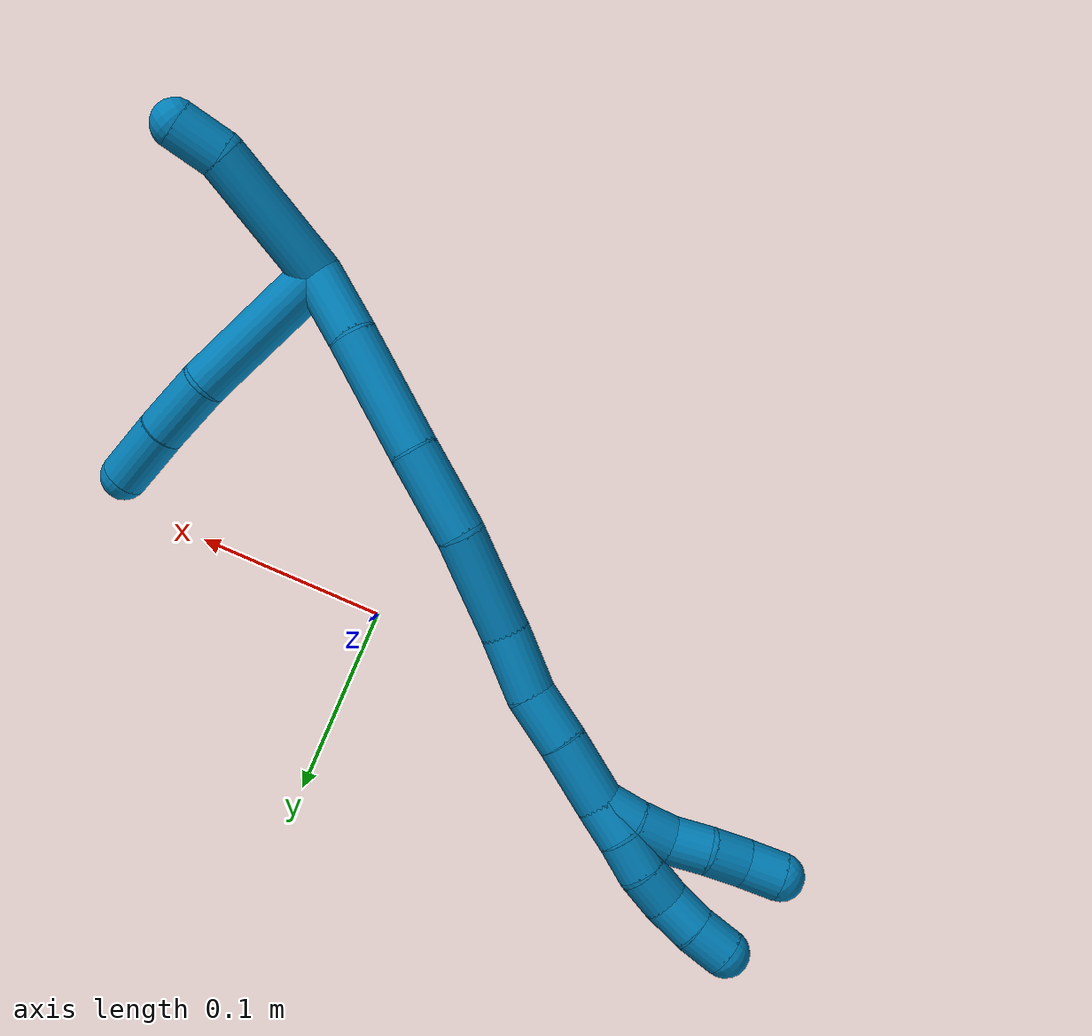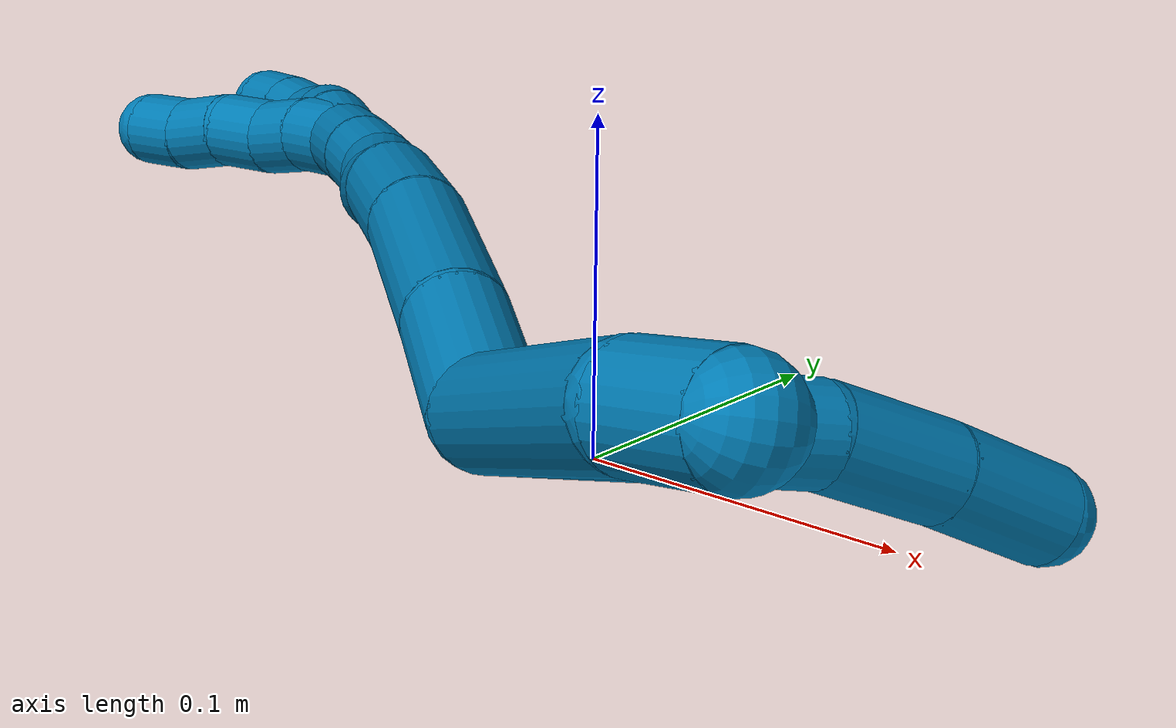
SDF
<sdf version="1.7">
 <world name="default">
  <model name="9">
   <static>0</static>
   <link name="9">
    <collision name="collision-cylinder-e_1_2_8">
     <pose>-0.002409 -0.00118 0.039666 0.029729 -0.060639 -0.000902</pose>
     <geometry><cylinder><radius>0.0125</radius><length>0.079512</length></cylinder></geometry>
     <surface>
      <friction><ode><mu>1.16</mu><mu2>1.16</mu2><slip1>0</slip1><slip2>0</slip2></ode></friction>
      <contact><ode><kp>1e+06</kp><kd>1</kd><max_vel>0</max_vel><min_depth>0.001</min_depth></ode></contact>
     </surface>
    </collision>
    <visual name="visual-cylinder-e_1_2_8">
     <pose>-0.002409 -0.00118 0.039666 0.029729 -0.060639 -0.000902</pose>
     <geometry><cylinder><radius>0.0125</radius><length>0.079512</length></cylinder></geometry>
     <material><ambient>0 0.490196 0.709804 1</ambient></material>
    </visual>
    <collision name="collision-cylinder-e_2_8_9">
     <pose>-0.005386 0.000877 0.096681 -0.184406 -0.03212 0.00297</pose>
     <geometry><cylinder><radius>0.0125</radius><length>0.035316</length></cylinder></geometry>
     <surface>
      <friction><ode><mu>1.16</mu><mu2>1.16</mu2><slip1>0</slip1><slip2>0</slip2></ode></friction>
      <contact><ode><kp>1e+06</kp><kd>1</kd><max_vel>0</max_vel><min_depth>0.001</min_depth></ode></contact>
     </surface>
    </collision>
    <visual name="visual-cylinder-e_2_8_9">
     <pose>-0.005386 0.000877 0.096681 -0.184406 -0.03212 0.00297</pose>
     <geometry><cylinder><radius>0.0125</radius><length>0.035316</length></cylinder></geometry>
     <material><ambient>0 0.490196 0.709804 1</ambient></material>
    </visual>
    <collision name="collision-cylinder-e_3_9_6">
     <pose>-0.006538 0.008415 0.131072 -0.247241 -0.03329 0.004137</pose>
     <geometry><cylinder><radius>0.0125</radius><length>0.035172</length></cylinder></geometry>
     <surface>
      <friction><ode><mu>1.16</mu><mu2>1.16</mu2><slip1>0</slip1><slip2>0</slip2></ode></friction>
      <contact><ode><kp>1e+06</kp><kd>1</kd><max_vel>0</max_vel><min_depth>0.001</min_depth></ode></contact>
     </surface>
    </collision>
    <visual name="visual-cylinder-e_3_9_6">
     <pose>-0.006538 0.008415 0.131072 -0.247241 -0.03329 0.004137</pose>
     <geometry><cylinder><radius>0.0125</radius><length>0.035172</length></cylinder></geometry>
     <material><ambient>0 0.490196 0.709804 1</ambient></material>
    </visual>
    <collision name="collision-cylinder-e_1_2_10">
     <pose>0.029685 -0.021934 -0.002642 1.69065 0.931003 1.03076</pose>
     <geometry><cylinder><radius>0.0125</radius><length>0.074007</length></cylinder></geometry>
     <surface>
      <friction><ode><mu>1.16</mu><mu2>1.16</mu2><slip1>0</slip1><slip2>0</slip2></ode></friction>
      <contact><ode><kp>1e+06</kp><kd>1</kd><max_vel>0</max_vel><min_depth>0.001</min_depth></ode></contact>
     </surface>
    </collision>
    <visual name="visual-cylinder-e_1_2_10">
     <pose>0.029685 -0.021934 -0.002642 1.69065 0.931003 1.03076</pose>
     <geometry><cylinder><radius>0.0125</radius><length>0.074007</length></cylinder></geometry>
     <material><ambient>0 0.490196 0.709804 1</ambient></material>
    </visual>
    <collision name="collision-cylinder-e_2_10_5">
     <pose>0.070053 -0.050594 -0.002196 1.14061 0.964935 0.648178</pose>
     <geometry><cylinder><radius>0.0125</radius><length>0.025993</length></cylinder></geometry>
     <surface>
      <friction><ode><mu>1.16</mu><mu2>1.16</mu2><slip1>0</slip1><slip2>0</slip2></ode></friction>
      <contact><ode><kp>1e+06</kp><kd>1</kd><max_vel>0</max_vel><min_depth>0.001</min_depth></ode></contact>
     </surface>
    </collision>
    <visual name="visual-cylinder-e_2_10_5">
     <pose>0.070053 -0.050594 -0.002196 1.14061 0.964935 0.648178</pose>
     <geometry><cylinder><radius>0.0125</radius><length>0.025993</length></cylinder></geometry>
     <material><ambient>0 0.490196 0.709804 1</ambient></material>
    </visual>
    <collision name="collision-cylinder-e_1_2_11">
     <pose>-0.018443 0.000845 0.002001 -0.399506 -1.45357 0.356204</pose>
     <geometry><cylinder><radius>0.0125</radius><length>0.037141</length></cylinder></geometry>
     <surface>
      <friction><ode><mu>1.16</mu><mu2>1.16</mu2><slip1>0</slip1><slip2>0</slip2></ode></friction>
      <contact><ode><kp>1e+06</kp><kd>1</kd><max_vel>0</max_vel><min_depth>0.001</min_depth></ode></contact>
     </surface>
    </collision>
    <visual name="visual-cylinder-e_1_2_11">
     <pose>-0.018443 0.000845 0.002001 -0.399506 -1.45357 0.356204</pose>
     <geometry><cylinder><radius>0.0125</radius><length>0.037141</length></cylinder></geometry>
     <material><ambient>0 0.490196 0.709804 1</ambient></material>
    </visual>
    <collision name="collision-cylinder-e_2_11_12">
     <pose>-0.067614 0.007305 0.009214 -0.822546 -1.32645 0.656829</pose>
     <geometry><cylinder><radius>0.0125</radius><length>0.063337</length></cylinder></geometry>
     <surface>
      <friction><ode><mu>1.16</mu><mu2>1.16</mu2><slip1>0</slip1><slip2>0</slip2></ode></friction>
      <contact><ode><kp>1e+06</kp><kd>1</kd><max_vel>0</max_vel><min_depth>0.001</min_depth></ode></contact>
     </surface>
    </collision>
    <visual name="visual-cylinder-e_2_11_12">
     <pose>-0.067614 0.007305 0.009214 -0.822546 -1.32645 0.656829</pose>
     <geometry><cylinder><radius>0.0125</radius><length>0.063337</length></cylinder></geometry>
     <material><ambient>0 0.490196 0.709804 1</ambient></material>
    </visual>
    <collision name="collision-cylinder-e_3_12_13">
     <pose>-0.120264 0.019788 0.018609 -1.02388 -1.21921 0.747879</pose>
     <geometry><cylinder><radius>0.0125</radius><length>0.046702</length></cylinder></geometry>
     <surface>
      <friction><ode><mu>1.16</mu><mu2>1.16</mu2><slip1>0</slip1><slip2>0</slip2></ode></friction>
      <contact><ode><kp>1e+06</kp><kd>1</kd><max_vel>0</max_vel><min_depth>0.001</min_depth></ode></contact>
     </surface>
    </collision>
    <visual name="visual-cylinder-e_3_12_13">
     <pose>-0.120264 0.019788 0.018609 -1.02388 -1.21921 0.747879</pose>
     <geometry><cylinder><radius>0.0125</radius><length>0.046702</length></cylinder></geometry>
     <material><ambient>0 0.490196 0.709804 1</ambient></material>
    </visual>
    <collision name="collision-cylinder-e_4_13_14">
     <pose>-0.165034 0.038731 0.030746 -0.988259 -1.00655 0.576649</pose>
     <geometry><cylinder><radius>0.0125</radius><length>0.054077</length></cylinder></geometry>
     <surface>
      <friction><ode><mu>1.16</mu><mu2>1.16</mu2><slip1>0</slip1><slip2>0</slip2></ode></friction>
      <contact><ode><kp>1e+06</kp><kd>1</kd><max_vel>0</max_vel><min_depth>0.001</min_depth></ode></contact>
     </surface>
    </collision>
    <visual name="visual-cylinder-e_4_13_14">
     <pose>-0.165034 0.038731 0.030746 -0.988259 -1.00655 0.576649</pose>
     <geometry><cylinder><radius>0.0125</radius><length>0.054077</length></cylinder></geometry>
     <material><ambient>0 0.490196 0.709804 1</ambient></material>
    </visual>
    <collision name="collision-cylinder-e_5_14_15">
     <pose>-0.203164 0.056167 0.043859 -0.804647 -1.11776 0.520191</pose>
     <geometry><cylinder><radius>0.0125</radius><length>0.033994</length></cylinder></geometry>
     <surface>
      <friction><ode><mu>1.16</mu><mu2>1.16</mu2><slip1>0</slip1><slip2>0</slip2></ode></friction>
      <contact><ode><kp>1e+06</kp><kd>1</kd><max_vel>0</max_vel><min_depth>0.001</min_depth></ode></contact>
     </surface>
    </collision>
    <visual name="visual-cylinder-e_5_14_15">
     <pose>-0.203164 0.056167 0.043859 -0.804647 -1.11776 0.520191</pose>
     <geometry><cylinder><radius>0.0125</radius><length>0.033994</length></cylinder></geometry>
     <material><ambient>0 0.490196 0.709804 1</ambient></material>
    </visual>
    <collision name="collision-cylinder-e_6_15_16">
     <pose>-0.231783 0.06565 0.050406 -1.24575 -1.25557 0.961025</pose>
     <geometry><cylinder><radius>0.0125</radius><length>0.028057</length></cylinder></geometry>
     <surface>
      <friction><ode><mu>1.16</mu><mu2>1.16</mu2><slip1>0</slip1><slip2>0</slip2></ode></friction>
      <contact><ode><kp>1e+06</kp><kd>1</kd><max_vel>0</max_vel><min_depth>0.001</min_depth></ode></contact>
     </surface>
    </collision>
    <visual name="visual-cylinder-e_6_15_16">
     <pose>-0.231783 0.06565 0.050406 -1.24575 -1.25557 0.961025</pose>
     <geometry><cylinder><radius>0.0125</radius><length>0.028057</length></cylinder></geometry>
     <material><ambient>0 0.490196 0.709804 1</ambient></material>
    </visual>
    <collision name="collision-cylinder-e_7_16_1">
     <pose>-0.262061 0.076237 0.054586 -1.16338 -1.17681 0.826959</pose>
     <geometry><cylinder><radius>0.0125</radius><length>0.036692</length></cylinder></geometry>
     <surface>
      <friction><ode><mu>1.16</mu><mu2>1.16</mu2><slip1>0</slip1><slip2>0</slip2></ode></friction>
      <contact><ode><kp>1e+06</kp><kd>1</kd><max_vel>0</max_vel><min_depth>0.001</min_depth></ode></contact>
     </surface>
    </collision>
    <visual name="visual-cylinder-e_7_16_1">
     <pose>-0.262061 0.076237 0.054586 -1.16338 -1.17681 0.826959</pose>
     <geometry><cylinder><radius>0.0125</radius><length>0.036692</length></cylinder></geometry>
     <material><ambient>0 0.490196 0.709804 1</ambient></material>
    </visual>
    <collision name="collision-cylinder-e_1_1_17">
     <pose>-0.287545 0.086801 0.05418 -2.23332 -1.02426 1.71146</pose>
     <geometry><cylinder><radius>0.0125</radius><length>0.02</length></cylinder></geometry>
     <surface>
      <friction><ode><mu>1.16</mu><mu2>1.16</mu2><slip1>0</slip1><slip2>0</slip2></ode></friction>
      <contact><ode><kp>1e+06</kp><kd>1</kd><max_vel>0</max_vel><min_depth>0.001</min_depth></ode></contact>
     </surface>
    </collision>
    <visual name="visual-cylinder-e_1_1_17">
     <pose>-0.287545 0.086801 0.05418 -2.23332 -1.02426 1.71146</pose>
     <geometry><cylinder><radius>0.0125</radius><length>0.02</length></cylinder></geometry>
     <material><ambient>0 0.490196 0.709804 1</ambient></material>
    </visual>
    <collision name="collision-cylinder-e_2_17_18">
     <pose>-0.30369 0.0964 0.047526 -2.13182 -0.863557 1.38995</pose>
     <geometry><cylinder><radius>0.0125</radius><length>0.02</length></cylinder></geometry>
     <surface>
      <friction><ode><mu>1.16</mu><mu2>1.16</mu2><slip1>0</slip1><slip2>0</slip2></ode></friction>
      <contact><ode><kp>1e+06</kp><kd>1</kd><max_vel>0</max_vel><min_depth>0.001</min_depth></ode></contact>
     </surface>
    </collision>
    <visual name="visual-cylinder-e_2_17_18">
     <pose>-0.30369 0.0964 0.047526 -2.13182 -0.863557 1.38995</pose>
     <geometry><cylinder><radius>0.0125</radius><length>0.02</length></cylinder></geometry>
     <material><ambient>0 0.490196 0.709804 1</ambient></material>
    </visual>
    <collision name="collision-cylinder-e_3_18_19">
     <pose>-0.318701 0.105662 0.038504 -2.54734 -0.834468 1.93259</pose>
     <geometry><cylinder><radius>0.0125</radius><length>0.02</length></cylinder></geometry>
     <surface>
      <friction><ode><mu>1.16</mu><mu2>1.16</mu2><slip1>0</slip1><slip2>0</slip2></ode></friction>
      <contact><ode><kp>1e+06</kp><kd>1</kd><max_vel>0</max_vel><min_depth>0.001</min_depth></ode></contact>
     </surface>
    </collision>
    <visual name="visual-cylinder-e_3_18_19">
     <pose>-0.318701 0.105662 0.038504 -2.54734 -0.834468 1.93259</pose>
     <geometry><cylinder><radius>0.0125</radius><length>0.02</length></cylinder></geometry>
     <material><ambient>0 0.490196 0.709804 1</ambient></material>
    </visual>
    <collision name="collision-cylinder-e_4_19_20">
     <pose>-0.333132 0.115055 0.028586 -2.22869 -0.778471 1.39179</pose>
     <geometry><cylinder><radius>0.0125</radius><length>0.02</length></cylinder></geometry>
     <surface>
      <friction><ode><mu>1.16</mu><mu2>1.16</mu2><slip1>0</slip1><slip2>0</slip2></ode></friction>
      <contact><ode><kp>1e+06</kp><kd>1</kd><max_vel>0</max_vel><min_depth>0.001</min_depth></ode></contact>
     </surface>
    </collision>
    <visual name="visual-cylinder-e_4_19_20">
     <pose>-0.333132 0.115055 0.028586 -2.22869 -0.778471 1.39179</pose>
     <geometry><cylinder><radius>0.0125</radius><length>0.02</length></cylinder></geometry>
     <material><ambient>0 0.490196 0.709804 1</ambient></material>
    </visual>
    <collision name="collision-cylinder-e_5_20_4">
     <pose>-0.347934 0.124801 0.019482 -2.42824 -0.891414 1.81687</pose>
     <geometry><cylinder><radius>0.0125</radius><length>0.02</length></cylinder></geometry>
     <surface>
      <friction><ode><mu>1.16</mu><mu2>1.16</mu2><slip1>0</slip1><slip2>0</slip2></ode></friction>
      <contact><ode><kp>1e+06</kp><kd>1</kd><max_vel>0</max_vel><min_depth>0.001</min_depth></ode></contact>
     </surface>
    </collision>
    <visual name="visual-cylinder-e_5_20_4">
     <pose>-0.347934 0.124801 0.019482 -2.42824 -0.891414 1.81687</pose>
     <geometry><cylinder><radius>0.0125</radius><length>0.02</length></cylinder></geometry>
     <material><ambient>0 0.490196 0.709804 1</ambient></material>
    </visual>
    <collision name="collision-cylinder-e_1_1_21">
     <pose>-0.288669 0.085066 0.058352 -1.17914 -1.31233 0.95125</pose>
     <geometry><cylinder><radius>0.0125</radius><length>0.02</length></cylinder></geometry>
     <surface>
      <friction><ode><mu>1.16</mu><mu2>1.16</mu2><slip1>0</slip1><slip2>0</slip2></ode></friction>
      <contact><ode><kp>1e+06</kp><kd>1</kd><max_vel>0</max_vel><min_depth>0.001</min_depth></ode></contact>
     </surface>
    </collision>
    <visual name="visual-cylinder-e_1_1_21">
     <pose>-0.288669 0.085066 0.058352 -1.17914 -1.31233 0.95125</pose>
     <geometry><cylinder><radius>0.0125</radius><length>0.02</length></cylinder></geometry>
     <material><ambient>0 0.490196 0.709804 1</ambient></material>
    </visual>
    <collision name="collision-cylinder-e_2_21_22">
     <pose>-0.307501 0.090994 0.061149 -1.09873 -1.15884 0.762061</pose>
     <geometry><cylinder><radius>0.0125</radius><length>0.02</length></cylinder></geometry>
     <surface>
      <friction><ode><mu>1.16</mu><mu2>1.16</mu2><slip1>0</slip1><slip2>0</slip2></ode></friction>
      <contact><ode><kp>1e+06</kp><kd>1</kd><max_vel>0</max_vel><min_depth>0.001</min_depth></ode></contact>
     </surface>
    </collision>
    <visual name="visual-cylinder-e_2_21_22">
     <pose>-0.307501 0.090994 0.061149 -1.09873 -1.15884 0.762061</pose>
     <geometry><cylinder><radius>0.0125</radius><length>0.02</length></cylinder></geometry>
     <material><ambient>0 0.490196 0.709804 1</ambient></material>
    </visual>
    <collision name="collision-cylinder-e_3_22_23">
     <pose>-0.325349 0.099489 0.063495 -1.46459 -1.0522 0.962297</pose>
     <geometry><cylinder><radius>0.0125</radius><length>0.02</length></cylinder></geometry>
     <surface>
      <friction><ode><mu>1.16</mu><mu2>1.16</mu2><slip1>0</slip1><slip2>0</slip2></ode></friction>
      <contact><ode><kp>1e+06</kp><kd>1</kd><max_vel>0</max_vel><min_depth>0.001</min_depth></ode></contact>
     </surface>
    </collision>
    <visual name="visual-cylinder-e_3_22_23">
     <pose>-0.325349 0.099489 0.063495 -1.46459 -1.0522 0.962297</pose>
     <geometry><cylinder><radius>0.0125</radius><length>0.02</length></cylinder></geometry>
     <material><ambient>0 0.490196 0.709804 1</ambient></material>
    </visual>
    <collision name="collision-cylinder-e_4_23_24">
     <pose>-0.34347 0.107552 0.062951 -1.89949 -1.23325 1.56143</pose>
     <geometry><cylinder><radius>0.0125</radius><length>0.02</length></cylinder></geometry>
     <surface>
      <friction><ode><mu>1.16</mu><mu2>1.16</mu2><slip1>0</slip1><slip2>0</slip2></ode></friction>
      <contact><ode><kp>1e+06</kp><kd>1</kd><max_vel>0</max_vel><min_depth>0.001</min_depth></ode></contact>
     </surface>
    </collision>
    <visual name="visual-cylinder-e_4_23_24">
     <pose>-0.34347 0.107552 0.062951 -1.89949 -1.23325 1.56143</pose>
     <geometry><cylinder><radius>0.0125</radius><length>0.02</length></cylinder></geometry>
     <material><ambient>0 0.490196 0.709804 1</ambient></material>
    </visual>
    <collision name="collision-cylinder-e_5_24_3">
     <pose>-0.361921 0.114542 0.059918 -2.042 -1.12329 1.59723</pose>
     <geometry><cylinder><radius>0.0125</radius><length>0.02</length></cylinder></geometry>
     <surface>
      <friction><ode><mu>1.16</mu><mu2>1.16</mu2><slip1>0</slip1><slip2>0</slip2></ode></friction>
      <contact><ode><kp>1e+06</kp><kd>1</kd><max_vel>0</max_vel><min_depth>0.001</min_depth></ode></contact>
     </surface>
    </collision>
    <visual name="visual-cylinder-e_5_24_3">
     <pose>-0.361921 0.114542 0.059918 -2.042 -1.12329 1.59723</pose>
     <geometry><cylinder><radius>0.0125</radius><length>0.02</length></cylinder></geometry>
     <material><ambient>0 0.490196 0.709804 1</ambient></material>
    </visual>
    <collision name="collision-sphere-3">
     <pose>-0.370936 0.118398 0.057953 0 -0 0</pose>
     <geometry><sphere><radius>0.0125</radius></sphere></geometry>
     <surface>
      <friction><ode><mu>1.16</mu><mu2>1.16</mu2><slip1>0</slip1><slip2>0</slip2></ode></friction>
      <contact><ode><kp>1e+06</kp><kd>1</kd><max_vel>0</max_vel><min_depth>0.001</min_depth></ode></contact>
     </surface>
    </collision>
    <visual name="visual-sphere-3">
     <pose>-0.370936 0.118398 0.057953 0 -0 0</pose>
     <geometry><sphere><radius>0.0125</radius></sphere></geometry>
     <material><ambient>0 0.490196 0.709804 1</ambient></material>
    </visual>
    <collision name="collision-sphere-24">
     <pose>-0.352906 0.110687 0.061882 0 -0 0</pose>
     <geometry><sphere><radius>0.0125</radius></sphere></geometry>
     <surface>
      <friction><ode><mu>1.16</mu><mu2>1.16</mu2><slip1>0</slip1><slip2>0</slip2></ode></friction>
      <contact><ode><kp>1e+06</kp><kd>1</kd><max_vel>0</max_vel><min_depth>0.001</min_depth></ode></contact>
     </surface>
    </collision>
    <visual name="visual-sphere-24">
     <pose>-0.352906 0.110687 0.061882 0 -0 0</pose>
     <geometry><sphere><radius>0.0125</radius></sphere></geometry>
     <material><ambient>0 0.490196 0.709804 1</ambient></material>
    </visual>
    <collision name="collision-sphere-23">
     <pose>-0.334034 0.104418 0.06402 0 -0 0</pose>
     <geometry><sphere><radius>0.0125</radius></sphere></geometry>
     <surface>
      <friction><ode><mu>1.16</mu><mu2>1.16</mu2><slip1>0</slip1><slip2>0</slip2></ode></friction>
      <contact><ode><kp>1e+06</kp><kd>1</kd><max_vel>0</max_vel><min_depth>0.001</min_depth></ode></contact>
     </surface>
    </collision>
    <visual name="visual-sphere-23">
     <pose>-0.334034 0.104418 0.06402 0 -0 0</pose>
     <geometry><sphere><radius>0.0125</radius></sphere></geometry>
     <material><ambient>0 0.490196 0.709804 1</ambient></material>
    </visual>
    <collision name="collision-sphere-22">
     <pose>-0.316664 0.09456 0.062969 0 -0 0</pose>
     <geometry><sphere><radius>0.0125</radius></sphere></geometry>
     <surface>
      <friction><ode><mu>1.16</mu><mu2>1.16</mu2><slip1>0</slip1><slip2>0</slip2></ode></friction>
      <contact><ode><kp>1e+06</kp><kd>1</kd><max_vel>0</max_vel><min_depth>0.001</min_depth></ode></contact>
     </surface>
    </collision>
    <visual name="visual-sphere-22">
     <pose>-0.316664 0.09456 0.062969 0 -0 0</pose>
     <geometry><sphere><radius>0.0125</radius></sphere></geometry>
     <material><ambient>0 0.490196 0.709804 1</ambient></material>
    </visual>
    <collision name="collision-sphere-21">
     <pose>-0.298337 0.087428 0.059328 0 -0 0</pose>
     <geometry><sphere><radius>0.0125</radius></sphere></geometry>
     <surface>
      <friction><ode><mu>1.16</mu><mu2>1.16</mu2><slip1>0</slip1><slip2>0</slip2></ode></friction>
      <contact><ode><kp>1e+06</kp><kd>1</kd><max_vel>0</max_vel><min_depth>0.001</min_depth></ode></contact>
     </surface>
    </collision>
    <visual name="visual-sphere-21">
     <pose>-0.298337 0.087428 0.059328 0 -0 0</pose>
     <geometry><sphere><radius>0.0125</radius></sphere></geometry>
     <material><ambient>0 0.490196 0.709804 1</ambient></material>
    </visual>
    <collision name="collision-sphere-4">
     <pose>-0.355713 0.128912 0.014731 0 -0 0</pose>
     <geometry><sphere><radius>0.0125</radius></sphere></geometry>
     <surface>
      <friction><ode><mu>1.16</mu><mu2>1.16</mu2><slip1>0</slip1><slip2>0</slip2></ode></friction>
      <contact><ode><kp>1e+06</kp><kd>1</kd><max_vel>0</max_vel><min_depth>0.001</min_depth></ode></contact>
     </surface>
    </collision>
    <visual name="visual-sphere-4">
     <pose>-0.355713 0.128912 0.014731 0 -0 0</pose>
     <geometry><sphere><radius>0.0125</radius></sphere></geometry>
     <material><ambient>0 0.490196 0.709804 1</ambient></material>
    </visual>
    <collision name="collision-sphere-20">
     <pose>-0.340154 0.120689 0.024233 0 -0 0</pose>
     <geometry><sphere><radius>0.0125</radius></sphere></geometry>
     <surface>
      <friction><ode><mu>1.16</mu><mu2>1.16</mu2><slip1>0</slip1><slip2>0</slip2></ode></friction>
      <contact><ode><kp>1e+06</kp><kd>1</kd><max_vel>0</max_vel><min_depth>0.001</min_depth></ode></contact>
     </surface>
    </collision>
    <visual name="visual-sphere-20">
     <pose>-0.340154 0.120689 0.024233 0 -0 0</pose>
     <geometry><sphere><radius>0.0125</radius></sphere></geometry>
     <material><ambient>0 0.490196 0.709804 1</ambient></material>
    </visual>
    <collision name="collision-sphere-5">
     <pose>0.080736 -0.057321 0.00089 0 -0 0</pose>
     <geometry><sphere><radius>0.0125</radius></sphere></geometry>
     <surface>
      <friction><ode><mu>1.16</mu><mu2>1.16</mu2><slip1>0</slip1><slip2>0</slip2></ode></friction>
      <contact><ode><kp>1e+06</kp><kd>1</kd><max_vel>0</max_vel><min_depth>0.001</min_depth></ode></contact>
     </surface>
    </collision>
    <visual name="visual-sphere-5">
     <pose>0.080736 -0.057321 0.00089 0 -0 0</pose>
     <geometry><sphere><radius>0.0125</radius></sphere></geometry>
     <material><ambient>0 0.490196 0.709804 1</ambient></material>
    </visual>
    <collision name="collision-sphere-10">
     <pose>0.05937 -0.043867 -0.005283 0 -0 0</pose>
     <geometry><sphere><radius>0.0125</radius></sphere></geometry>
     <surface>
      <friction><ode><mu>1.16</mu><mu2>1.16</mu2><slip1>0</slip1><slip2>0</slip2></ode></friction>
      <contact><ode><kp>1e+06</kp><kd>1</kd><max_vel>0</max_vel><min_depth>0.001</min_depth></ode></contact>
     </surface>
    </collision>
    <visual name="visual-sphere-10">
     <pose>0.05937 -0.043867 -0.005283 0 -0 0</pose>
     <geometry><sphere><radius>0.0125</radius></sphere></geometry>
     <material><ambient>0 0.490196 0.709804 1</ambient></material>
    </visual>
    <collision name="collision-sphere-6">
     <pose>-0.007123 0.012716 0.148114 0 -0 0</pose>
     <geometry><sphere><radius>0.0125</radius></sphere></geometry>
     <surface>
      <friction><ode><mu>1.16</mu><mu2>1.16</mu2><slip1>0</slip1><slip2>0</slip2></ode></friction>
      <contact><ode><kp>1e+06</kp><kd>1</kd><max_vel>0</max_vel><min_depth>0.001</min_depth></ode></contact>
     </surface>
    </collision>
    <visual name="visual-sphere-6">
     <pose>-0.007123 0.012716 0.148114 0 -0 0</pose>
     <geometry><sphere><radius>0.0125</radius></sphere></geometry>
     <material><ambient>0 0.490196 0.709804 1</ambient></material>
    </visual>
    <collision name="collision-sphere-9">
     <pose>-0.005953 0.004113 0.11403 0 -0 0</pose>
     <geometry><sphere><radius>0.0125</radius></sphere></geometry>
     <surface>
      <friction><ode><mu>1.16</mu><mu2>1.16</mu2><slip1>0</slip1><slip2>0</slip2></ode></friction>
      <contact><ode><kp>1e+06</kp><kd>1</kd><max_vel>0</max_vel><min_depth>0.001</min_depth></ode></contact>
     </surface>
    </collision>
    <visual name="visual-sphere-9">
     <pose>-0.005953 0.004113 0.11403 0 -0 0</pose>
     <geometry><sphere><radius>0.0125</radius></sphere></geometry>
     <material><ambient>0 0.490196 0.709804 1</ambient></material>
    </visual>
    <collision name="collision-sphere-2">
     <geometry><sphere><radius>0.0125</radius></sphere></geometry>
     <surface>
      <friction><ode><mu>1.16</mu><mu2>1.16</mu2><slip1>0</slip1><slip2>0</slip2></ode></friction>
      <contact><ode><kp>1e+06</kp><kd>1</kd><max_vel>0</max_vel><min_depth>0.001</min_depth></ode></contact>
     </surface>
    </collision>
    <visual name="visual-sphere-2">
     <geometry><sphere><radius>0.0125</radius></sphere></geometry>
     <material><ambient>0 0.490196 0.709804 1</ambient></material>
    </visual>
    <collision name="collision-sphere-19">
     <pose>-0.32611 0.109422 0.03294 0 -0 0</pose>
     <geometry><sphere><radius>0.0125</radius></sphere></geometry>
     <surface>
      <friction><ode><mu>1.16</mu><mu2>1.16</mu2><slip1>0</slip1><slip2>0</slip2></ode></friction>
      <contact><ode><kp>1e+06</kp><kd>1</kd><max_vel>0</max_vel><min_depth>0.001</min_depth></ode></contact>
     </surface>
    </collision>
    <visual name="visual-sphere-19">
     <pose>-0.32611 0.109422 0.03294 0 -0 0</pose>
     <geometry><sphere><radius>0.0125</radius></sphere></geometry>
     <material><ambient>0 0.490196 0.709804 1</ambient></material>
    </visual>
    <collision name="collision-sphere-8">
     <pose>-0.004819 -0.002359 0.079331 0 -0 0</pose>
     <geometry><sphere><radius>0.0125</radius></sphere></geometry>
     <surface>
      <friction><ode><mu>1.16</mu><mu2>1.16</mu2><slip1>0</slip1><slip2>0</slip2></ode></friction>
      <contact><ode><kp>1e+06</kp><kd>1</kd><max_vel>0</max_vel><min_depth>0.001</min_depth></ode></contact>
     </surface>
    </collision>
    <visual name="visual-sphere-8">
     <pose>-0.004819 -0.002359 0.079331 0 -0 0</pose>
     <geometry><sphere><radius>0.0125</radius></sphere></geometry>
     <material><ambient>0 0.490196 0.709804 1</ambient></material>
    </visual>
    <collision name="collision-sphere-11">
     <pose>-0.036886 0.00169 0.004002 0 -0 0</pose>
     <geometry><sphere><radius>0.0125</radius></sphere></geometry>
     <surface>
      <friction><ode><mu>1.16</mu><mu2>1.16</mu2><slip1>0</slip1><slip2>0</slip2></ode></friction>
      <contact><ode><kp>1e+06</kp><kd>1</kd><max_vel>0</max_vel><min_depth>0.001</min_depth></ode></contact>
     </surface>
    </collision>
    <visual name="visual-sphere-11">
     <pose>-0.036886 0.00169 0.004002 0 -0 0</pose>
     <geometry><sphere><radius>0.0125</radius></sphere></geometry>
     <material><ambient>0 0.490196 0.709804 1</ambient></material>
    </visual>
    <collision name="collision-sphere-12">
     <pose>-0.098342 0.012919 0.014427 0 -0 0</pose>
     <geometry><sphere><radius>0.0125</radius></sphere></geometry>
     <surface>
      <friction><ode><mu>1.16</mu><mu2>1.16</mu2><slip1>0</slip1><slip2>0</slip2></ode></friction>
      <contact><ode><kp>1e+06</kp><kd>1</kd><max_vel>0</max_vel><min_depth>0.001</min_depth></ode></contact>
     </surface>
    </collision>
    <visual name="visual-sphere-12">
     <pose>-0.098342 0.012919 0.014427 0 -0 0</pose>
     <geometry><sphere><radius>0.0125</radius></sphere></geometry>
     <material><ambient>0 0.490196 0.709804 1</ambient></material>
    </visual>
    <collision name="collision-sphere-13">
     <pose>-0.142187 0.026657 0.022791 0 -0 0</pose>
     <geometry><sphere><radius>0.0125</radius></sphere></geometry>
     <surface>
      <friction><ode><mu>1.16</mu><mu2>1.16</mu2><slip1>0</slip1><slip2>0</slip2></ode></friction>
      <contact><ode><kp>1e+06</kp><kd>1</kd><max_vel>0</max_vel><min_depth>0.001</min_depth></ode></contact>
     </surface>
    </collision>
    <visual name="visual-sphere-13">
     <pose>-0.142187 0.026657 0.022791 0 -0 0</pose>
     <geometry><sphere><radius>0.0125</radius></sphere></geometry>
     <material><ambient>0 0.490196 0.709804 1</ambient></material>
    </visual>
    <collision name="collision-sphere-14">
     <pose>-0.187881 0.050806 0.038701 0 -0 0</pose>
     <geometry><sphere><radius>0.0125</radius></sphere></geometry>
     <surface>
      <friction><ode><mu>1.16</mu><mu2>1.16</mu2><slip1>0</slip1><slip2>0</slip2></ode></friction>
      <contact><ode><kp>1e+06</kp><kd>1</kd><max_vel>0</max_vel><min_depth>0.001</min_depth></ode></contact>
     </surface>
    </collision>
    <visual name="visual-sphere-14">
     <pose>-0.187881 0.050806 0.038701 0 -0 0</pose>
     <geometry><sphere><radius>0.0125</radius></sphere></geometry>
     <material><ambient>0 0.490196 0.709804 1</ambient></material>
    </visual>
    <collision name="collision-sphere-15">
     <pose>-0.218446 0.061528 0.049018 0 -0 0</pose>
     <geometry><sphere><radius>0.0125</radius></sphere></geometry>
     <surface>
      <friction><ode><mu>1.16</mu><mu2>1.16</mu2><slip1>0</slip1><slip2>0</slip2></ode></friction>
      <contact><ode><kp>1e+06</kp><kd>1</kd><max_vel>0</max_vel><min_depth>0.001</min_depth></ode></contact>
     </surface>
    </collision>
    <visual name="visual-sphere-15">
     <pose>-0.218446 0.061528 0.049018 0 -0 0</pose>
     <geometry><sphere><radius>0.0125</radius></sphere></geometry>
     <material><ambient>0 0.490196 0.709804 1</ambient></material>
    </visual>
    <collision name="collision-sphere-16">
     <pose>-0.245121 0.069771 0.051795 0 -0 0</pose>
     <geometry><sphere><radius>0.0125</radius></sphere></geometry>
     <surface>
      <friction><ode><mu>1.16</mu><mu2>1.16</mu2><slip1>0</slip1><slip2>0</slip2></ode></friction>
      <contact><ode><kp>1e+06</kp><kd>1</kd><max_vel>0</max_vel><min_depth>0.001</min_depth></ode></contact>
     </surface>
    </collision>
    <visual name="visual-sphere-16">
     <pose>-0.245121 0.069771 0.051795 0 -0 0</pose>
     <geometry><sphere><radius>0.0125</radius></sphere></geometry>
     <material><ambient>0 0.490196 0.709804 1</ambient></material>
    </visual>
    <collision name="collision-sphere-1">
     <pose>-0.279002 0.082703 0.057376 0 -0 0</pose>
     <geometry><sphere><radius>0.0125</radius></sphere></geometry>
     <surface>
      <friction><ode><mu>1.16</mu><mu2>1.16</mu2><slip1>0</slip1><slip2>0</slip2></ode></friction>
      <contact><ode><kp>1e+06</kp><kd>1</kd><max_vel>0</max_vel><min_depth>0.001</min_depth></ode></contact>
     </surface>
    </collision>
    <visual name="visual-sphere-1">
     <pose>-0.279002 0.082703 0.057376 0 -0 0</pose>
     <geometry><sphere><radius>0.0125</radius></sphere></geometry>
     <material><ambient>0 0.490196 0.709804 1</ambient></material>
    </visual>
    <collision name="collision-sphere-18">
     <pose>-0.311291 0.101902 0.044069 0 -0 0</pose>
     <geometry><sphere><radius>0.0125</radius></sphere></geometry>
     <surface>
      <friction><ode><mu>1.16</mu><mu2>1.16</mu2><slip1>0</slip1><slip2>0</slip2></ode></friction>
      <contact><ode><kp>1e+06</kp><kd>1</kd><max_vel>0</max_vel><min_depth>0.001</min_depth></ode></contact>
     </surface>
    </collision>
    <visual name="visual-sphere-18">
     <pose>-0.311291 0.101902 0.044069 0 -0 0</pose>
     <geometry><sphere><radius>0.0125</radius></sphere></geometry>
     <material><ambient>0 0.490196 0.709804 1</ambient></material>
    </visual>
    <collision name="collision-sphere-17">
     <pose>-0.296088 0.090899 0.050983 0 -0 0</pose>
     <geometry><sphere><radius>0.0125</radius></sphere></geometry>
     <surface>
      <friction><ode><mu>1.16</mu><mu2>1.16</mu2><slip1>0</slip1><slip2>0</slip2></ode></friction>
      <contact><ode><kp>1e+06</kp><kd>1</kd><max_vel>0</max_vel><min_depth>0.001</min_depth></ode></contact>
     </surface>
    </collision>
    <visual name="visual-sphere-17">
     <pose>-0.296088 0.090899 0.050983 0 -0 0</pose>
     <geometry><sphere><radius>0.0125</radius></sphere></geometry>
     <material><ambient>0 0.490196 0.709804 1</ambient></material>
    </visual>
    <inertial>
     <pose>-0.137981 0.037178 0.038542 0 -0 0</pose>
     <mass>0.75</mass>
     <inertia><ixx>9.8e-05</ixx><ixy>0</ixy><ixz>0</ixz><iyy>0.000203</iyy><iyz>0</iyz><izz>5.8e-05</izz></inertia>
    </inertial>
   </link>
   <pose>0.091471 -0.145535 0.074259 -1.8294 0.295794 -0.558602</pose>
  </model>
 </world>
</sdf>
